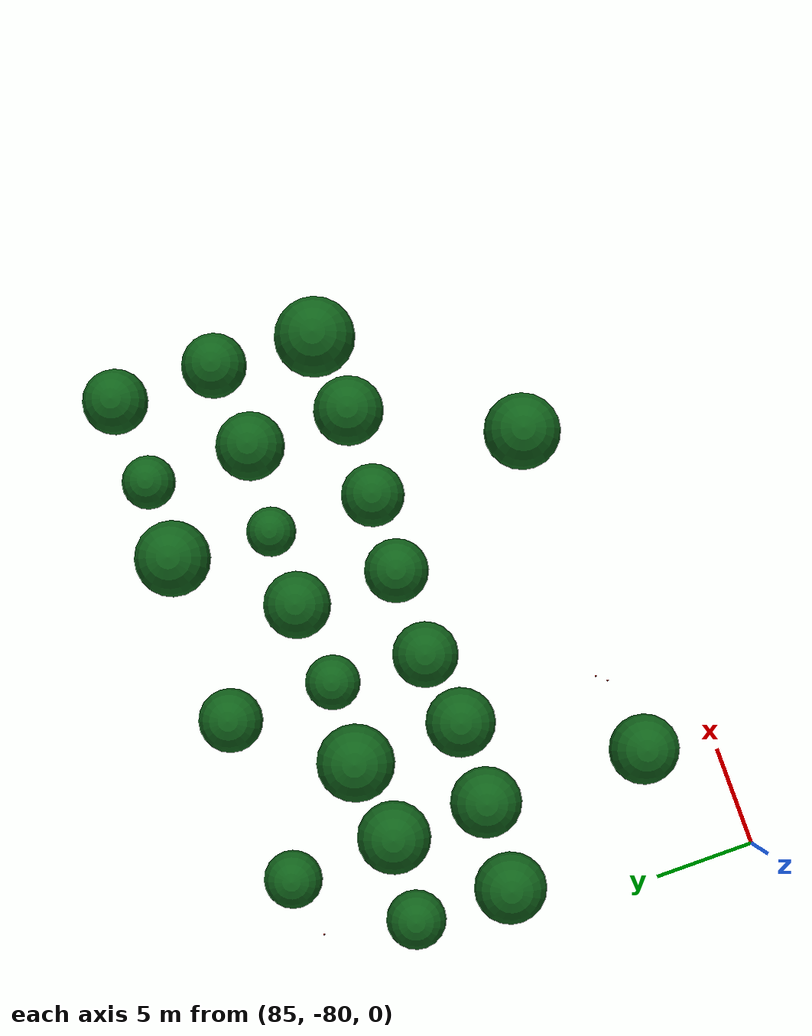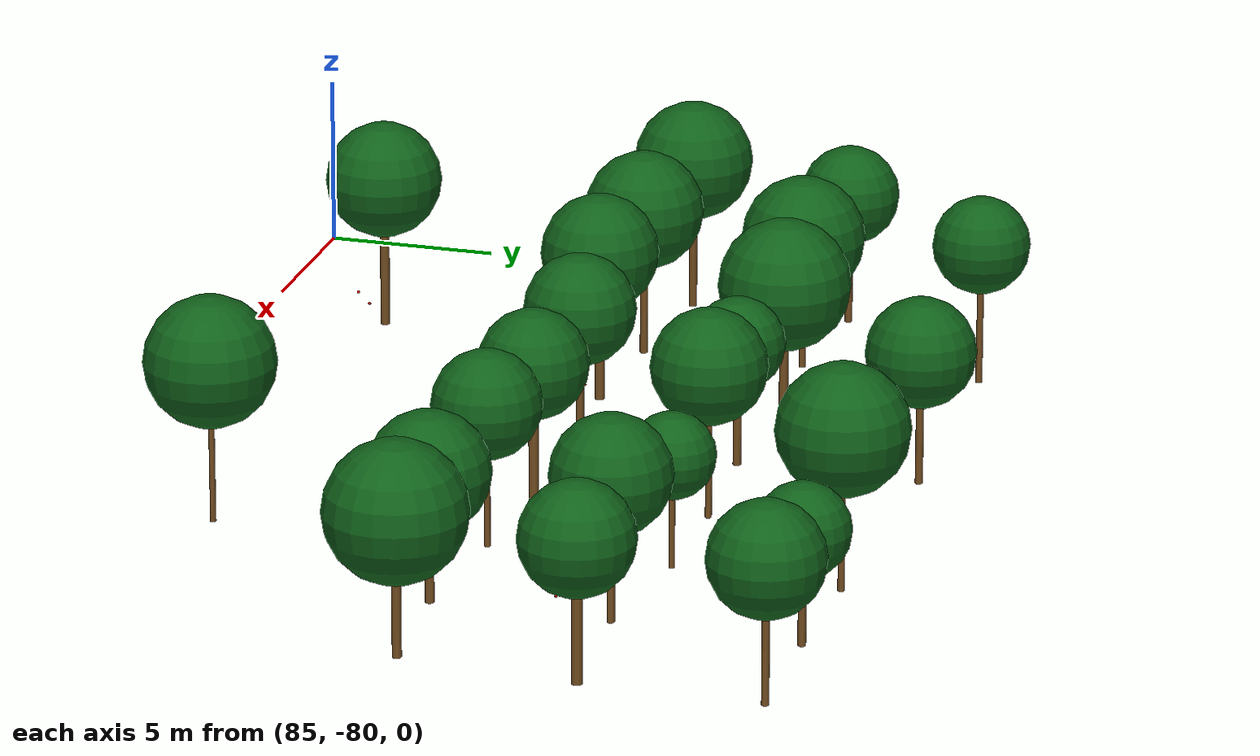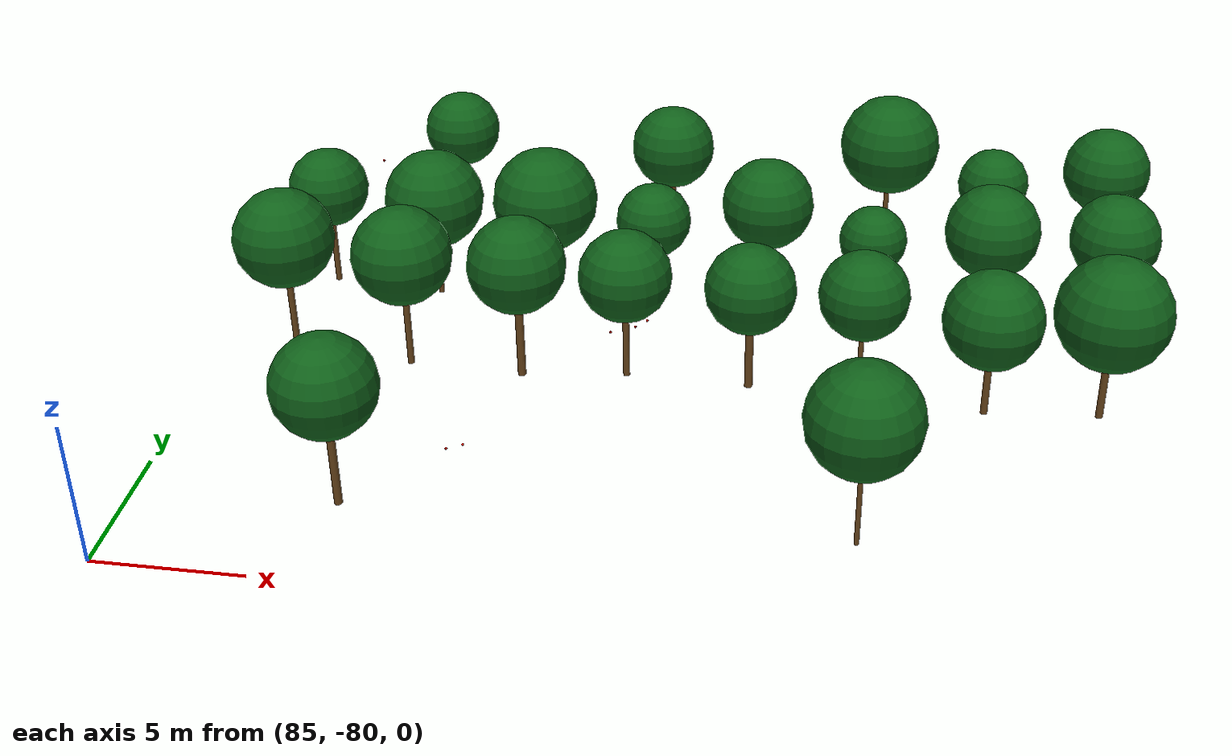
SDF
<sdf version="1.9">
 <world name="cheongsong_orchard">
  <model name="apple_tree_479">
   <static>true</static>
   <pose>91.68 -76.21 0 0 0 0</pose>
   <link name="link">
    <collision name="trunk_col">
     <pose>0 0 1.40 0 0 0</pose>
     <geometry><cylinder><radius>0.135</radius><length>2.80</length></cylinder></geometry>
    </collision>
    <visual name="trunk_vis">
     <pose>0 0 1.40 0 0 0</pose>
     <geometry><cylinder><radius>0.135</radius><length>2.80</length></cylinder></geometry>
     <material><ambient>0.35 0.22 0.08 1</ambient><diffuse>0.45 0.30 0.12 1</diffuse></material>
    </visual>
    <collision name="canopy_col">
     <pose>0 0 4.50 0 0 0</pose>
     <geometry><sphere><radius>1.70</radius></sphere></geometry>
    </collision>
    <visual name="canopy_vis">
     <pose>0 0 4.50 0 0 0</pose>
     <geometry><sphere><radius>1.70</radius></sphere></geometry>
     <material><ambient>0.04 0.28 0.06 1</ambient><diffuse>0.06 0.38 0.10 1</diffuse></material>
    </visual>
   </link>
  </model>
  <model name="apple_tree_483">
   <static>true</static>
   <pose>107.96 -75.94 0 0 0 0</pose>
   <link name="link">
    <collision name="trunk_col">
     <pose>0 0 1.41 0 0 0</pose>
     <geometry><cylinder><radius>0.081</radius><length>2.82</length></cylinder></geometry>
    </collision>
    <visual name="trunk_vis">
     <pose>0 0 1.41 0 0 0</pose>
     <geometry><cylinder><radius>0.081</radius><length>2.82</length></cylinder></geometry>
     <material><ambient>0.35 0.22 0.08 1</ambient><diffuse>0.45 0.30 0.12 1</diffuse></material>
    </visual>
    <collision name="canopy_col">
     <pose>0 0 4.68 0 0 0</pose>
     <geometry><sphere><radius>1.85</radius></sphere></geometry>
    </collision>
    <visual name="canopy_vis">
     <pose>0 0 4.68 0 0 0</pose>
     <geometry><sphere><radius>1.85</radius></sphere></geometry>
     <material><ambient>0.04 0.28 0.06 1</ambient><diffuse>0.06 0.38 0.10 1</diffuse></material>
    </visual>
   </link>
  </model>
  <model name="apple_tree_537">
   <static>true</static>
   <pose>87.64 -67.92 0 0 0 0</pose>
   <link name="link">
    <collision name="trunk_col">
     <pose>0 0 1.40 0 0 0</pose>
     <geometry><cylinder><radius>0.116</radius><length>2.80</length></cylinder></geometry>
    </collision>
    <visual name="trunk_vis">
     <pose>0 0 1.40 0 0 0</pose>
     <geometry><cylinder><radius>0.116</radius><length>2.80</length></cylinder></geometry>
     <material><ambient>0.35 0.22 0.08 1</ambient><diffuse>0.45 0.30 0.12 1</diffuse></material>
    </visual>
    <collision name="canopy_col">
     <pose>0 0 4.55 0 0 0</pose>
     <geometry><sphere><radius>1.75</radius></sphere></geometry>
    </collision>
    <visual name="canopy_vis">
     <pose>0 0 4.55 0 0 0</pose>
     <geometry><sphere><radius>1.75</radius></sphere></geometry>
     <material><ambient>0.04 0.28 0.06 1</ambient><diffuse>0.06 0.38 0.10 1</diffuse></material>
    </visual>
   </link>
  </model>
  <model name="apple_tree_538">
   <static>true</static>
   <pose>91.88 -68.23 0 0 0 0</pose>
   <link name="link">
    <collision name="trunk_col">
     <pose>0 0 1.33 0 0 0</pose>
     <geometry><cylinder><radius>0.114</radius><length>2.66</length></cylinder></geometry>
    </collision>
    <visual name="trunk_vis">
     <pose>0 0 1.33 0 0 0</pose>
     <geometry><cylinder><radius>0.114</radius><length>2.66</length></cylinder></geometry>
     <material><ambient>0.35 0.22 0.08 1</ambient><diffuse>0.45 0.30 0.12 1</diffuse></material>
    </visual>
    <collision name="canopy_col">
     <pose>0 0 4.39 0 0 0</pose>
     <geometry><sphere><radius>1.73</radius></sphere></geometry>
    </collision>
    <visual name="canopy_vis">
     <pose>0 0 4.39 0 0 0</pose>
     <geometry><sphere><radius>1.73</radius></sphere></geometry>
     <material><ambient>0.04 0.28 0.06 1</ambient><diffuse>0.06 0.38 0.10 1</diffuse></material>
    </visual>
   </link>
  </model>
  <model name="apple_tree_539">
   <static>true</static>
   <pose>95.90 -68.40 0 0 0 0</pose>
   <link name="link">
    <collision name="trunk_col">
     <pose>0 0 1.38 0 0 0</pose>
     <geometry><cylinder><radius>0.142</radius><length>2.76</length></cylinder></geometry>
    </collision>
    <visual name="trunk_vis">
     <pose>0 0 1.38 0 0 0</pose>
     <geometry><cylinder><radius>0.142</radius><length>2.76</length></cylinder></geometry>
     <material><ambient>0.35 0.22 0.08 1</ambient><diffuse>0.45 0.30 0.12 1</diffuse></material>
    </visual>
    <collision name="canopy_col">
     <pose>0 0 4.45 0 0 0</pose>
     <geometry><sphere><radius>1.69</radius></sphere></geometry>
    </collision>
    <visual name="canopy_vis">
     <pose>0 0 4.45 0 0 0</pose>
     <geometry><sphere><radius>1.69</radius></sphere></geometry>
     <material><ambient>0.04 0.28 0.06 1</ambient><diffuse>0.06 0.38 0.10 1</diffuse></material>
    </visual>
   </link>
  </model>
  <model name="apple_tree_540">
   <static>true</static>
   <pose>99.52 -67.93 0 0 0 0</pose>
   <link name="link">
    <collision name="trunk_col">
     <pose>0 0 1.22 0 0 0</pose>
     <geometry><cylinder><radius>0.113</radius><length>2.44</length></cylinder></geometry>
    </collision>
    <visual name="trunk_vis">
     <pose>0 0 1.22 0 0 0</pose>
     <geometry><cylinder><radius>0.113</radius><length>2.44</length></cylinder></geometry>
     <material><ambient>0.35 0.22 0.08 1</ambient><diffuse>0.45 0.30 0.12 1</diffuse></material>
    </visual>
    <collision name="canopy_col">
     <pose>0 0 4.04 0 0 0</pose>
     <geometry><sphere><radius>1.60</radius></sphere></geometry>
    </collision>
    <visual name="canopy_vis">
     <pose>0 0 4.04 0 0 0</pose>
     <geometry><sphere><radius>1.60</radius></sphere></geometry>
     <material><ambient>0.04 0.28 0.06 1</ambient><diffuse>0.06 0.38 0.10 1</diffuse></material>
    </visual>
   </link>
  </model>
  <model name="apple_tree_541">
   <static>true</static>
   <pose>103.79 -68.01 0 0 0 0</pose>
   <link name="link">
    <collision name="trunk_col">
     <pose>0 0 1.19 0 0 0</pose>
     <geometry><cylinder><radius>0.140</radius><length>2.39</length></cylinder></geometry>
    </collision>
    <visual name="trunk_vis">
     <pose>0 0 1.19 0 0 0</pose>
     <geometry><cylinder><radius>0.140</radius><length>2.39</length></cylinder></geometry>
     <material><ambient>0.35 0.22 0.08 1</ambient><diffuse>0.45 0.30 0.12 1</diffuse></material>
    </visual>
    <collision name="canopy_col">
     <pose>0 0 3.94 0 0 0</pose>
     <geometry><sphere><radius>1.56</radius></sphere></geometry>
    </collision>
    <visual name="canopy_vis">
     <pose>0 0 3.94 0 0 0</pose>
     <geometry><sphere><radius>1.56</radius></sphere></geometry>
     <material><ambient>0.04 0.28 0.06 1</ambient><diffuse>0.06 0.38 0.10 1</diffuse></material>
    </visual>
   </link>
  </model>
  <model name="apple_tree_542">
   <static>true</static>
   <pose>107.58 -68.19 0 0 0 0</pose>
   <link name="link">
    <collision name="trunk_col">
     <pose>0 0 1.29 0 0 0</pose>
     <geometry><cylinder><radius>0.087</radius><length>2.59</length></cylinder></geometry>
    </collision>
    <visual name="trunk_vis">
     <pose>0 0 1.29 0 0 0</pose>
     <geometry><cylinder><radius>0.087</radius><length>2.59</length></cylinder></geometry>
     <material><ambient>0.35 0.22 0.08 1</ambient><diffuse>0.45 0.30 0.12 1</diffuse></material>
    </visual>
    <collision name="canopy_col">
     <pose>0 0 4.12 0 0 0</pose>
     <geometry><sphere><radius>1.53</radius></sphere></geometry>
    </collision>
    <visual name="canopy_vis">
     <pose>0 0 4.12 0 0 0</pose>
     <geometry><sphere><radius>1.53</radius></sphere></geometry>
     <material><ambient>0.04 0.28 0.06 1</ambient><diffuse>0.06 0.38 0.10 1</diffuse></material>
    </visual>
   </link>
  </model>
  <model name="apple_tree_543">
   <static>true</static>
   <pose>111.84 -68.49 0 0 0 0</pose>
   <link name="link">
    <collision name="trunk_col">
     <pose>0 0 1.02 0 0 0</pose>
     <geometry><cylinder><radius>0.122</radius><length>2.04</length></cylinder></geometry>
    </collision>
    <visual name="trunk_vis">
     <pose>0 0 1.02 0 0 0</pose>
     <geometry><cylinder><radius>0.122</radius><length>2.04</length></cylinder></geometry>
     <material><ambient>0.35 0.22 0.08 1</ambient><diffuse>0.45 0.30 0.12 1</diffuse></material>
    </visual>
    <collision name="canopy_col">
     <pose>0 0 3.73 0 0 0</pose>
     <geometry><sphere><radius>1.70</radius></sphere></geometry>
    </collision>
    <visual name="canopy_vis">
     <pose>0 0 3.73 0 0 0</pose>
     <geometry><sphere><radius>1.70</radius></sphere></geometry>
     <material><ambient>0.04 0.28 0.06 1</ambient><diffuse>0.06 0.38 0.10 1</diffuse></material>
    </visual>
   </link>
  </model>
  <model name="apple_tree_544">
   <static>true</static>
   <pose>115.69 -68.18 0 0 0 0</pose>
   <link name="link">
    <collision name="trunk_col">
     <pose>0 0 1.08 0 0 0</pose>
     <geometry><cylinder><radius>0.127</radius><length>2.15</length></cylinder></geometry>
    </collision>
    <visual name="trunk_vis">
     <pose>0 0 1.08 0 0 0</pose>
     <geometry><cylinder><radius>0.127</radius><length>2.15</length></cylinder></geometry>
     <material><ambient>0.35 0.22 0.08 1</ambient><diffuse>0.45 0.30 0.12 1</diffuse></material>
    </visual>
    <collision name="canopy_col">
     <pose>0 0 4.11 0 0 0</pose>
     <geometry><sphere><radius>1.96</radius></sphere></geometry>
    </collision>
    <visual name="canopy_vis">
     <pose>0 0 4.11 0 0 0</pose>
     <geometry><sphere><radius>1.96</radius></sphere></geometry>
     <material><ambient>0.04 0.28 0.06 1</ambient><diffuse>0.06 0.38 0.10 1</diffuse></material>
    </visual>
   </link>
  </model>
  <model name="apple_tree_593">
   <static>true</static>
   <pose>87.69 -63.14 0 0 0 0</pose>
   <link name="link">
    <collision name="trunk_col">
     <pose>0 0 1.25 0 0 0</pose>
     <geometry><cylinder><radius>0.106</radius><length>2.50</length></cylinder></geometry>
    </collision>
    <visual name="trunk_vis">
     <pose>0 0 1.25 0 0 0</pose>
     <geometry><cylinder><radius>0.106</radius><length>2.50</length></cylinder></geometry>
     <material><ambient>0.35 0.22 0.08 1</ambient><diffuse>0.45 0.30 0.12 1</diffuse></material>
    </visual>
    <collision name="canopy_col">
     <pose>0 0 3.95 0 0 0</pose>
     <geometry><sphere><radius>1.45</radius></sphere></geometry>
    </collision>
    <visual name="canopy_vis">
     <pose>0 0 3.95 0 0 0</pose>
     <geometry><sphere><radius>1.45</radius></sphere></geometry>
     <material><ambient>0.04 0.28 0.06 1</ambient><diffuse>0.06 0.38 0.10 1</diffuse></material>
    </visual>
   </link>
  </model>
  <model name="apple_tree_594">
   <static>true</static>
   <pose>91.77 -63.49 0 0 0 0</pose>
   <link name="link">
    <collision name="trunk_col">
     <pose>0 0 1.10 0 0 0</pose>
     <geometry><cylinder><radius>0.096</radius><length>2.19</length></cylinder></geometry>
    </collision>
    <visual name="trunk_vis">
     <pose>0 0 1.10 0 0 0</pose>
     <geometry><cylinder><radius>0.096</radius><length>2.19</length></cylinder></geometry>
     <material><ambient>0.35 0.22 0.08 1</ambient><diffuse>0.45 0.30 0.12 1</diffuse></material>
    </visual>
    <collision name="canopy_col">
     <pose>0 0 3.98 0 0 0</pose>
     <geometry><sphere><radius>1.79</radius></sphere></geometry>
    </collision>
    <visual name="canopy_vis">
     <pose>0 0 3.98 0 0 0</pose>
     <geometry><sphere><radius>1.79</radius></sphere></geometry>
     <material><ambient>0.04 0.28 0.06 1</ambient><diffuse>0.06 0.38 0.10 1</diffuse></material>
    </visual>
   </link>
  </model>
  <model name="apple_tree_595">
   <static>true</static>
   <pose>95.77 -62.99 0 0 0 0</pose>
   <link name="link">
    <collision name="trunk_col">
     <pose>0 0 1.04 0 0 0</pose>
     <geometry><cylinder><radius>0.131</radius><length>2.08</length></cylinder></geometry>
    </collision>
    <visual name="trunk_vis">
     <pose>0 0 1.04 0 0 0</pose>
     <geometry><cylinder><radius>0.131</radius><length>2.08</length></cylinder></geometry>
     <material><ambient>0.35 0.22 0.08 1</ambient><diffuse>0.45 0.30 0.12 1</diffuse></material>
    </visual>
    <collision name="canopy_col">
     <pose>0 0 3.98 0 0 0</pose>
     <geometry><sphere><radius>1.90</radius></sphere></geometry>
    </collision>
    <visual name="canopy_vis">
     <pose>0 0 3.98 0 0 0</pose>
     <geometry><sphere><radius>1.90</radius></sphere></geometry>
     <material><ambient>0.04 0.28 0.06 1</ambient><diffuse>0.06 0.38 0.10 1</diffuse></material>
    </visual>
   </link>
  </model>
  <model name="apple_tree_596">
   <static>true</static>
   <pose>99.79 -63.27 0 0 0 0</pose>
   <link name="link">
    <collision name="trunk_col">
     <pose>0 0 1.12 0 0 0</pose>
     <geometry><cylinder><radius>0.119</radius><length>2.25</length></cylinder></geometry>
    </collision>
    <visual name="trunk_vis">
     <pose>0 0 1.12 0 0 0</pose>
     <geometry><cylinder><radius>0.119</radius><length>2.25</length></cylinder></geometry>
     <material><ambient>0.35 0.22 0.08 1</ambient><diffuse>0.45 0.30 0.12 1</diffuse></material>
    </visual>
    <collision name="canopy_col">
     <pose>0 0 3.59 0 0 0</pose>
     <geometry><sphere><radius>1.34</radius></sphere></geometry>
    </collision>
    <visual name="canopy_vis">
     <pose>0 0 3.59 0 0 0</pose>
     <geometry><sphere><radius>1.34</radius></sphere></geometry>
     <material><ambient>0.04 0.28 0.06 1</ambient><diffuse>0.06 0.38 0.10 1</diffuse></material>
    </visual>
   </link>
  </model>
  <model name="apple_tree_597">
   <static>true</static>
   <pose>103.87 -62.98 0 0 0 0</pose>
   <link name="link">
    <collision name="trunk_col">
     <pose>0 0 1.39 0 0 0</pose>
     <geometry><cylinder><radius>0.090</radius><length>2.79</length></cylinder></geometry>
    </collision>
    <visual name="trunk_vis">
     <pose>0 0 1.39 0 0 0</pose>
     <geometry><cylinder><radius>0.090</radius><length>2.79</length></cylinder></geometry>
     <material><ambient>0.35 0.22 0.08 1</ambient><diffuse>0.45 0.30 0.12 1</diffuse></material>
    </visual>
    <collision name="canopy_col">
     <pose>0 0 4.42 0 0 0</pose>
     <geometry><sphere><radius>1.63</radius></sphere></geometry>
    </collision>
    <visual name="canopy_vis">
     <pose>0 0 4.42 0 0 0</pose>
     <geometry><sphere><radius>1.63</radius></sphere></geometry>
     <material><ambient>0.04 0.28 0.06 1</ambient><diffuse>0.06 0.38 0.10 1</diffuse></material>
    </visual>
   </link>
  </model>
  <model name="apple_tree_598">
   <static>true</static>
   <pose>107.67 -62.96 0 0 0 0</pose>
   <link name="link">
    <collision name="trunk_col">
     <pose>0 0 1.01 0 0 0</pose>
     <geometry><cylinder><radius>0.085</radius><length>2.02</length></cylinder></geometry>
    </collision>
    <visual name="trunk_vis">
     <pose>0 0 1.01 0 0 0</pose>
     <geometry><cylinder><radius>0.085</radius><length>2.02</length></cylinder></geometry>
     <material><ambient>0.35 0.22 0.08 1</ambient><diffuse>0.45 0.30 0.12 1</diffuse></material>
    </visual>
    <collision name="canopy_col">
     <pose>0 0 3.24 0 0 0</pose>
     <geometry><sphere><radius>1.21</radius></sphere></geometry>
    </collision>
    <visual name="canopy_vis">
     <pose>0 0 3.24 0 0 0</pose>
     <geometry><sphere><radius>1.21</radius></sphere></geometry>
     <material><ambient>0.04 0.28 0.06 1</ambient><diffuse>0.06 0.38 0.10 1</diffuse></material>
    </visual>
   </link>
  </model>
  <model name="apple_tree_599">
   <static>true</static>
   <pose>111.81 -63.47 0 0 0 0</pose>
   <link name="link">
    <collision name="trunk_col">
     <pose>0 0 1.26 0 0 0</pose>
     <geometry><cylinder><radius>0.108</radius><length>2.52</length></cylinder></geometry>
    </collision>
    <visual name="trunk_vis">
     <pose>0 0 1.26 0 0 0</pose>
     <geometry><cylinder><radius>0.108</radius><length>2.52</length></cylinder></geometry>
     <material><ambient>0.35 0.22 0.08 1</ambient><diffuse>0.45 0.30 0.12 1</diffuse></material>
    </visual>
    <collision name="canopy_col">
     <pose>0 0 4.19 0 0 0</pose>
     <geometry><sphere><radius>1.67</radius></sphere></geometry>
    </collision>
    <visual name="canopy_vis">
     <pose>0 0 4.19 0 0 0</pose>
     <geometry><sphere><radius>1.67</radius></sphere></geometry>
     <material><ambient>0.04 0.28 0.06 1</ambient><diffuse>0.06 0.38 0.10 1</diffuse></material>
    </visual>
   </link>
  </model>
  <model name="apple_tree_600">
   <static>true</static>
   <pose>116.05 -63.16 0 0 0 0</pose>
   <link name="link">
    <collision name="trunk_col">
     <pose>0 0 1.24 0 0 0</pose>
     <geometry><cylinder><radius>0.150</radius><length>2.48</length></cylinder></geometry>
    </collision>
    <visual name="trunk_vis">
     <pose>0 0 1.24 0 0 0</pose>
     <geometry><cylinder><radius>0.150</radius><length>2.48</length></cylinder></geometry>
     <material><ambient>0.35 0.22 0.08 1</ambient><diffuse>0.45 0.30 0.12 1</diffuse></material>
    </visual>
    <collision name="canopy_col">
     <pose>0 0 4.06 0 0 0</pose>
     <geometry><sphere><radius>1.58</radius></sphere></geometry>
    </collision>
    <visual name="canopy_vis">
     <pose>0 0 4.06 0 0 0</pose>
     <geometry><sphere><radius>1.58</radius></sphere></geometry>
     <material><ambient>0.04 0.28 0.06 1</ambient><diffuse>0.06 0.38 0.10 1</diffuse></material>
    </visual>
   </link>
  </model>
  <model name="apple_tree_651">
   <static>true</static>
   <pose>91.57 -58.27 0 0 0 0</pose>
   <link name="link">
    <collision name="trunk_col">
     <pose>0 0 1.40 0 0 0</pose>
     <geometry><cylinder><radius>0.093</radius><length>2.79</length></cylinder></geometry>
    </collision>
    <visual name="trunk_vis">
     <pose>0 0 1.40 0 0 0</pose>
     <geometry><cylinder><radius>0.093</radius><length>2.79</length></cylinder></geometry>
     <material><ambient>0.35 0.22 0.08 1</ambient><diffuse>0.45 0.30 0.12 1</diffuse></material>
    </visual>
    <collision name="canopy_col">
     <pose>0 0 4.20 0 0 0</pose>
     <geometry><sphere><radius>1.41</radius></sphere></geometry>
    </collision>
    <visual name="canopy_vis">
     <pose>0 0 4.20 0 0 0</pose>
     <geometry><sphere><radius>1.41</radius></sphere></geometry>
     <material><ambient>0.04 0.28 0.06 1</ambient><diffuse>0.06 0.38 0.10 1</diffuse></material>
    </visual>
   </link>
  </model>
  <model name="apple_tree_653">
   <static>true</static>
   <pose>99.76 -58.04 0 0 0 0</pose>
   <link name="link">
    <collision name="trunk_col">
     <pose>0 0 1.15 0 0 0</pose>
     <geometry><cylinder><radius>0.108</radius><length>2.31</length></cylinder></geometry>
    </collision>
    <visual name="trunk_vis">
     <pose>0 0 1.15 0 0 0</pose>
     <geometry><cylinder><radius>0.108</radius><length>2.31</length></cylinder></geometry>
     <material><ambient>0.35 0.22 0.08 1</ambient><diffuse>0.45 0.30 0.12 1</diffuse></material>
    </visual>
    <collision name="canopy_col">
     <pose>0 0 3.87 0 0 0</pose>
     <geometry><sphere><radius>1.56</radius></sphere></geometry>
    </collision>
    <visual name="canopy_vis">
     <pose>0 0 3.87 0 0 0</pose>
     <geometry><sphere><radius>1.56</radius></sphere></geometry>
     <material><ambient>0.04 0.28 0.06 1</ambient><diffuse>0.06 0.38 0.10 1</diffuse></material>
    </visual>
   </link>
  </model>
  <model name="apple_tree_655">
   <static>true</static>
   <pose>107.99 -58.16 0 0 0 0</pose>
   <link name="link">
    <collision name="trunk_col">
     <pose>0 0 1.39 0 0 0</pose>
     <geometry><cylinder><radius>0.094</radius><length>2.78</length></cylinder></geometry>
    </collision>
    <visual name="trunk_vis">
     <pose>0 0 1.39 0 0 0</pose>
     <geometry><cylinder><radius>0.094</radius><length>2.78</length></cylinder></geometry>
     <material><ambient>0.35 0.22 0.08 1</ambient><diffuse>0.45 0.30 0.12 1</diffuse></material>
    </visual>
    <collision name="canopy_col">
     <pose>0 0 4.62 0 0 0</pose>
     <geometry><sphere><radius>1.84</radius></sphere></geometry>
    </collision>
    <visual name="canopy_vis">
     <pose>0 0 4.62 0 0 0</pose>
     <geometry><sphere><radius>1.84</radius></sphere></geometry>
     <material><ambient>0.04 0.28 0.06 1</ambient><diffuse>0.06 0.38 0.10 1</diffuse></material>
    </visual>
   </link>
  </model>
  <model name="apple_tree_656">
   <static>true</static>
   <pose>111.95 -58.21 0 0 0 0</pose>
   <link name="link">
    <collision name="trunk_col">
     <pose>0 0 0.98 0 0 0</pose>
     <geometry><cylinder><radius>0.110</radius><length>1.96</length></cylinder></geometry>
    </collision>
    <visual name="trunk_vis">
     <pose>0 0 0.98 0 0 0</pose>
     <geometry><cylinder><radius>0.110</radius><length>1.96</length></cylinder></geometry>
     <material><ambient>0.35 0.22 0.08 1</ambient><diffuse>0.45 0.30 0.12 1</diffuse></material>
    </visual>
    <collision name="canopy_col">
     <pose>0 0 3.27 0 0 0</pose>
     <geometry><sphere><radius>1.31</radius></sphere></geometry>
    </collision>
    <visual name="canopy_vis">
     <pose>0 0 3.27 0 0 0</pose>
     <geometry><sphere><radius>1.31</radius></sphere></geometry>
     <material><ambient>0.04 0.28 0.06 1</ambient><diffuse>0.06 0.38 0.10 1</diffuse></material>
    </visual>
   </link>
  </model>
  <model name="apple_tree_657">
   <static>true</static>
   <pose>116.05 -58.11 0 0 0 0</pose>
   <link name="link">
    <collision name="trunk_col">
     <pose>0 0 1.24 0 0 0</pose>
     <geometry><cylinder><radius>0.102</radius><length>2.47</length></cylinder></geometry>
    </collision>
    <visual name="trunk_vis">
     <pose>0 0 1.24 0 0 0</pose>
     <geometry><cylinder><radius>0.102</radius><length>2.47</length></cylinder></geometry>
     <material><ambient>0.35 0.22 0.08 1</ambient><diffuse>0.45 0.30 0.12 1</diffuse></material>
    </visual>
    <collision name="canopy_col">
     <pose>0 0 4.06 0 0 0</pose>
     <geometry><sphere><radius>1.59</radius></sphere></geometry>
    </collision>
    <visual name="canopy_vis">
     <pose>0 0 4.06 0 0 0</pose>
     <geometry><sphere><radius>1.59</radius></sphere></geometry>
     <material><ambient>0.04 0.28 0.06 1</ambient><diffuse>0.06 0.38 0.10 1</diffuse></material>
    </visual>
   </link>
  </model>
  <model name="apple_480_1">
   <static>true</static>
   <pose>95.63 -75.40 2.09 0 0 0</pose>
   <link name="link">
    <visual name="visual">
     <geometry><sphere><radius>0.04</radius></sphere></geometry>
     <material><ambient>0.7 0.05 0.02 1</ambient><diffuse>0.9 0.10 0.05 1</diffuse></material>
    </visual>
   </link>
  </model>
  <model name="apple_480_2">
   <static>true</static>
   <pose>95.23 -75.87 2.25 0 0 0</pose>
   <link name="link">
    <visual name="visual">
     <geometry><sphere><radius>0.04</radius></sphere></geometry>
     <material><ambient>0.7 0.05 0.02 1</ambient><diffuse>0.9 0.10 0.05 1</diffuse></material>
    </visual>
   </link>
  </model>
  <model name="apple_540_0">
   <static>true</static>
   <pose>100.21 -67.58 2.07 0 0 0</pose>
   <link name="link">
    <visual name="visual">
     <geometry><sphere><radius>0.04</radius></sphere></geometry>
     <material><ambient>0.7 0.05 0.02 1</ambient><diffuse>0.9 0.10 0.05 1</diffuse></material>
    </visual>
   </link>
  </model>
  <model name="apple_540_1">
   <static>true</static>
   <pose>99.86 -67.99 2.05 0 0 0</pose>
   <link name="link">
    <visual name="visual">
     <geometry><sphere><radius>0.04</radius></sphere></geometry>
     <material><ambient>0.7 0.05 0.02 1</ambient><diffuse>0.9 0.10 0.05 1</diffuse></material>
    </visual>
   </link>
  </model>
  <model name="apple_540_2">
   <static>true</static>
   <pose>99.09 -68.47 2.07 0 0 0</pose>
   <link name="link">
    <visual name="visual">
     <geometry><sphere><radius>0.04</radius></sphere></geometry>
     <material><ambient>0.7 0.05 0.02 1</ambient><diffuse>0.9 0.10 0.05 1</diffuse></material>
    </visual>
   </link>
  </model>
  <model name="apple_600_0">
   <static>true</static>
   <pose>115.71 -62.77 2.70 0 0 0</pose>
   <link name="link">
    <visual name="visual">
     <geometry><sphere><radius>0.04</radius></sphere></geometry>
     <material><ambient>0.7 0.05 0.02 1</ambient><diffuse>0.9 0.10 0.05 1</diffuse></material>
    </visual>
   </link>
  </model>
  <model name="apple_600_1">
   <static>true</static>
   <pose>115.99 -63.74 2.36 0 0 0</pose>
   <link name="link">
    <visual name="visual">
     <geometry><sphere><radius>0.04</radius></sphere></geometry>
     <material><ambient>0.7 0.05 0.02 1</ambient><diffuse>0.9 0.10 0.05 1</diffuse></material>
    </visual>
   </link>
  </model>
  <model name="apple_600_2">
   <static>true</static>
   <pose>115.37 -63.20 2.40 0 0 0</pose>
   <link name="link">
    <visual name="visual">
     <geometry><sphere><radius>0.04</radius></sphere></geometry>
     <material><ambient>0.7 0.05 0.02 1</ambient><diffuse>0.9 0.10 0.05 1</diffuse></material>
    </visual>
   </link>
  </model>
  <model name="apple_650_2">
   <static>true</static>
   <pose>88.39 -58.61 2.73 0 0 0</pose>
   <link name="link">
    <visual name="visual">
     <geometry><sphere><radius>0.04</radius></sphere></geometry>
     <material><ambient>0.7 0.05 0.02 1</ambient><diffuse>0.9 0.10 0.05 1</diffuse></material>
    </visual>
   </link>
  </model>
 </world>
</sdf>
